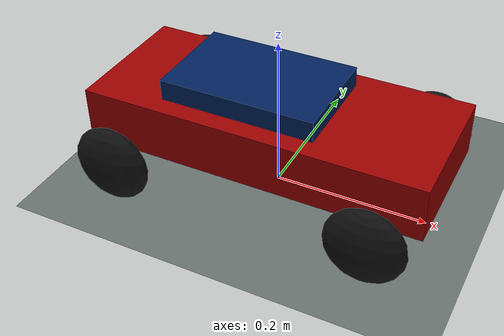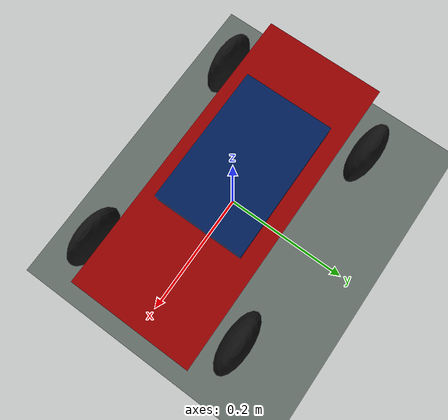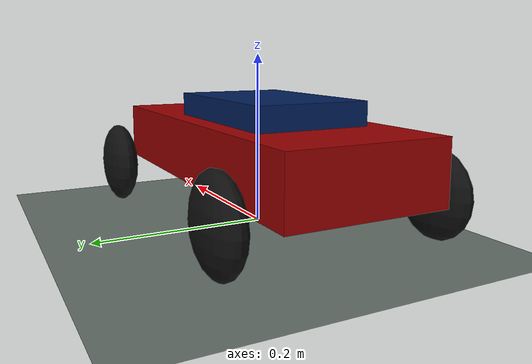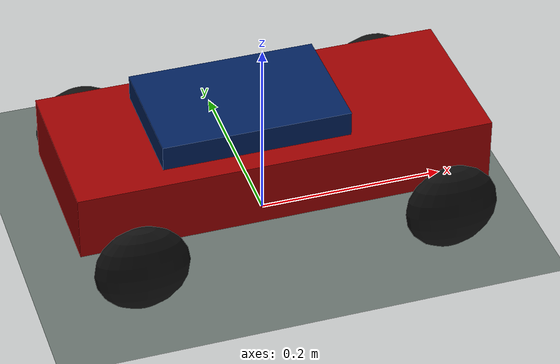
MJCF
<mujoco model="coaching_ackermann_v1"><compiler angle="radian" autolimits="true" /><option timestep="0.005" integrator="Euler" solver="Newton" iterations="8" ls_iterations="8" tolerance="1e-8" cone="pyramidal" gravity="0 0 -9.81" /><default><geom friction="0.9 0.005 0.0001" condim="3" solref="0.02 1" solimp="0.9 0.95 0.001" contype="0" conaffinity="0" /></default><worldbody><light pos="0 0 10" dir="0 0 -1" diffuse="0.8 0.8 0.8" /><geom name="ground" type="plane" size="200 200 0.1" rgba="0.4 0.44 0.42 1" /><body name="car" pos="0 0 0.09"><freejoint name="root" /><geom name="chassis" type="box" size="0.22 0.09 0.035" mass="3.03" rgba="0.6 0 0 1" /><geom name="canopy" type="box" pos="-0.025 0 0.047" size="0.10 0.065 0.015" mass="0" rgba="0.004 0.122 0.357 1" /><body name="front_left" pos="0.165 0.125 -0.035"><inertial pos="0 0 0" mass="0.02" diaginertia="0.0001 0.0001 0.0001" /><joint name="front_left_steer" axis="0 0 1" range="-0.65 0.65" damping="0.05" armature="0.001" /><body name="front_left_wheel"><joint name="front_left_spin" axis="0 1 0" damping="0.0001" armature="0.00001" /><geom name="front_left_tire" type="ellipsoid" size="0.05 0.02 0.05" mass="0.1" rgba="0.06 0.06 0.06 1" /></body></body><body name="front_right" pos="0.165 -0.125 -0.035"><inertial pos="0 0 0" mass="0.02" diaginertia="0.0001 0.0001 0.0001" /><joint name="front_right_steer" axis="0 0 1" range="-0.65 0.65" damping="0.05" armature="0.001" /><body name="front_right_wheel"><joint name="front_right_spin" axis="0 1 0" damping="0.0001" armature="0.00001" /><geom name="front_right_tire" type="ellipsoid" size="0.05 0.02 0.05" mass="0.1" rgba="0.06 0.06 0.06 1" /></body></body><body name="rear_left" pos="-0.165 0.125 -0.035"><joint name="rear_left_spin" axis="0 1 0" damping="0.0001" armature="0.00001" /><geom name="rear_left_tire" type="ellipsoid" size="0.05 0.02 0.05" mass="0.1" rgba="0.06 0.06 0.06 1" /></body><body name="rear_right" pos="-0.165 -0.125 -0.035"><joint name="rear_right_spin" axis="0 1 0" damping="0.0001" armature="0.00001" /><geom name="rear_right_tire" type="ellipsoid" size="0.05 0.02 0.05" mass="0.1" rgba="0.06 0.06 0.06 1" /></body></body></worldbody><contact><pair geom1="ground" geom2="chassis" condim="3" friction="0.9 0.9 0.005 0.0001 0.0001" /><pair geom1="ground" geom2="front_left_tire" condim="3" friction="0.9 0.9 0.005 0.0001 0.0001" /><pair geom1="ground" geom2="front_right_tire" condim="3" friction="0.9 0.9 0.005 0.0001 0.0001" /><pair geom1="ground" geom2="rear_left_tire" condim="3" friction="0.9 0.9 0.005 0.0001 0.0001" /><pair geom1="ground" geom2="rear_right_tire" condim="3" friction="0.9 0.9 0.005 0.0001 0.0001" /></contact><actuator><position name="left_steering" joint="front_left_steer" kp="6" kv="0.25" forcerange="-1 1" ctrlrange="-0.65 0.65" /><position name="right_steering" joint="front_right_steer" kp="6" kv="0.25" forcerange="-1 1" ctrlrange="-0.65 0.65" /><velocity name="left_drive" joint="rear_left_spin" kv="0.015" forcerange="-0.35 0.35" ctrlrange="0 180" /><velocity name="right_drive" joint="rear_right_spin" kv="0.015" forcerange="-0.35 0.35" ctrlrange="0 180" /></actuator></mujoco>
